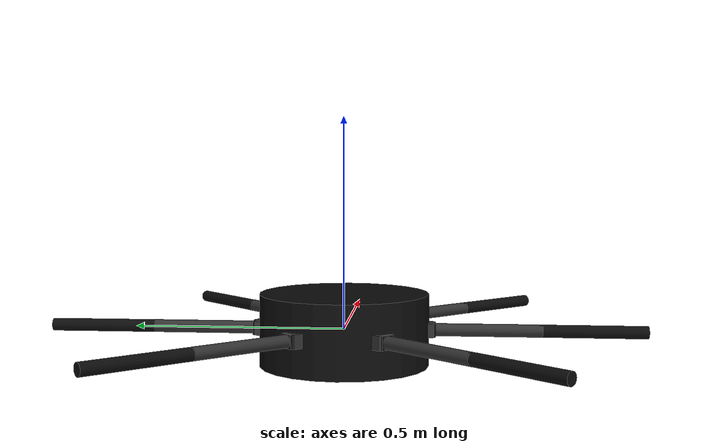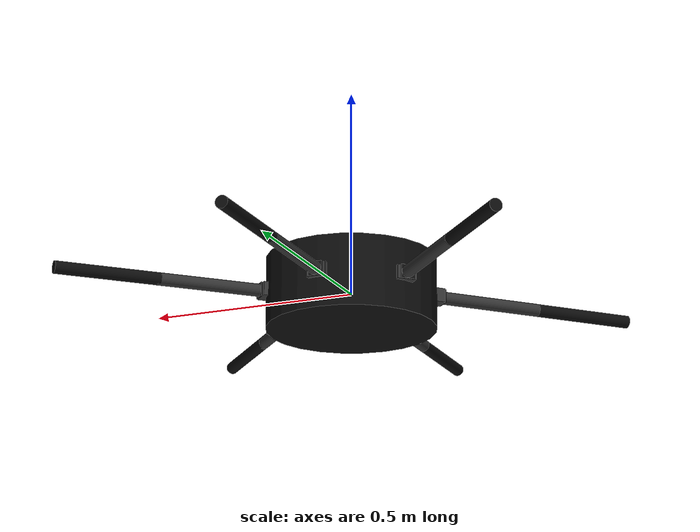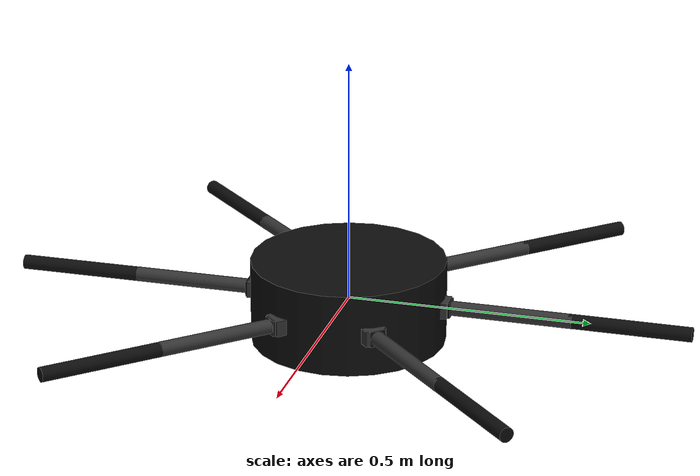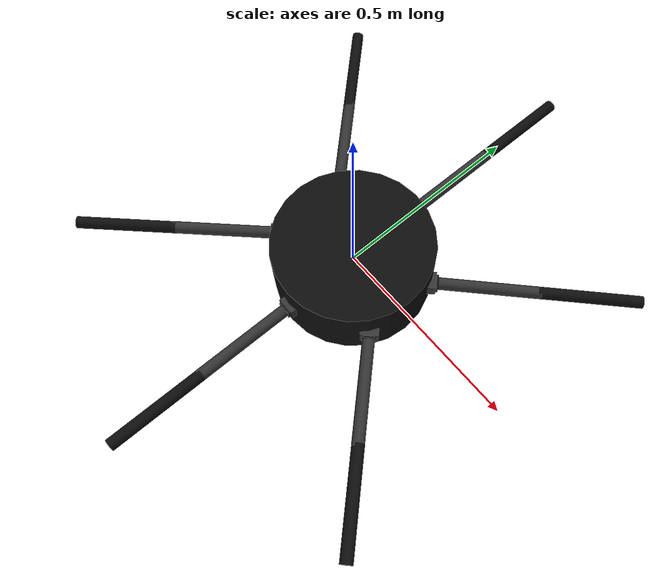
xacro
<?xml version="1.0" ?>
<robot name="ardent"  xmlns:xacro="http://www.ros.org/wiki/xacro">

  <xacro:include filename="$(find ardent)/robot/urdf/ardent_urdf.xacro" />

  <link name="base_link"/>

  <xacro:ardent parent="base_link">
      <origin xyz="0 0 0" rpy="0 0 0" />
  </xacro:ardent>

   <gazebo>
    <plugin filename="libgazebo_ros_control.so" name="gazebo_ros_control">
    </plugin>
  </gazebo>

</robot>

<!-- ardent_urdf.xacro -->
<robot xmlns:xacro="http://www.ros.org/wiki/xacro">

<xacro:property name="connect_offset" value="0.01" />
<xacro:property name="femur_offset_y" value="-0.125" />
<xacro:property name="femur_offset_z" value="-0.125" />

<xacro:property name="joint_lower_limit" value ="-${1.5}"/>
<xacro:property name="joint_upper_limit" value ="${1.5}"/>

<xacro:macro name="ardent" params="parent *origin">

    <link name="MP_BODY">
      <inertial>
        <origin xyz="0 0 0" />
        <mass value="6.8"/>
        <inertia ixx="3.1081800"  ixy="-0.25460189"  ixz="2.0318174" iyy="6.3787776" iyz="0.16417863" izz="5.3316425" />
      </inertial>
      <visual>
        <!--origin xyz="-0.0235 0 -0.03525" rpy="0 0 0" /-->
        <origin xyz="0 0 0" rpy="0 0 0" />
        <geometry>
          <cylinder radius="0.2" length="0.17"/>
          <!--box size="0.102 0.109 0.106" /-->
        </geometry>
        <material name="Orange">
        <color rgba="12 12 12 1.0"/>
      </material>
      </visual>
      <collision>
        <origin xyz="0 0 0" rpy="0 0 0" />
        <geometry>
          <cylinder radius="0.2" length="0.17"/>
        </geometry>
      </collision>
    </link>

    <joint name="j_ardent_attachment" type="fixed">
      <parent link="${parent}"/>
      <child link="MP_BODY"/>
      <xacro:insert_block name="origin" />
    </joint>

    <!-- Build Leg -->
    <xacro:leg_l xyz="0.175 -0.1  0.001116"  rpy="0 0 5.475" suffix="rf"/>
    <xacro:leg_l xyz="0 -0.2  0.001116"  rpy="0 0 -1.57" suffix="rm"/>
    <xacro:leg_l xyz="-0.175 -0.1  0.001116"  rpy="0 0 -2.335" suffix="rr"/>

    <xacro:leg_l xyz="0.175 0.1  0.001116"  rpy="0 0 0.765" suffix="lf"/>
    <xacro:leg_l xyz="0 0.2  0.001116"  rpy="0 0 1.57" suffix="lm"/>
    <xacro:leg_l xyz="-0.175 0.1  0.001116"  rpy="0 0 2.335" suffix="lr"/>

</xacro:macro>

 <xacro:macro name="leg_l" params="xyz rpy suffix">
  <link name="coxa_${suffix}">
    <inertial>
      <origin xyz="0 0 0" rpy="0 0 0"  />
      <mass value="0.024357719"/>
     <inertia ixx="0.0051411124"  ixy="-0.00057530255"  ixz="-0.000024729049" iyy="0.0081915737" iyz="-0.000019223094" izz="0.0011379812" />
    </inertial>
    <visual>
      <origin xyz="0 0 0" rpy="0 0 0"  />
      <geometry>
        <box size="0.022 0.045 0.0325" />
      </geometry>
      <material name="Grey">
        <color rgba="0.20 0.20 0.20 1.0"/>
      </material>
    </visual>
    <collision>
      <origin xyz="0 0 0" rpy="0 0 0"  />
      <geometry>
        <box size="0.022 0.045 0.0325" />
      </geometry>
    </collision>
  </link>

  <link name="c2_${suffix}">
    <inertial>
      <origin xyz="0 0 0" rpy="0 0 0"  />
      <mass value="0.024357719"/>
     <inertia ixx="0.0051411124"  ixy="-0.00057530255"  ixz="-0.000024729049" iyy="0.0081915737" iyz="-0.000019223094" izz="0.0011379812" />
    </inertial>
    <visual>
      <origin xyz="0 0 0" rpy="0 0 0"  />
      <geometry>
        <box size="0.005 0.0325 0.0325" />
      </geometry>
      <material name="Orange">
        <color rgba="12 12 12 1.0"/>
      </material>
    </visual>
    <collision>
      <origin xyz="0 0 0" rpy="0 0 0"  />
      <geometry>
        <box size="0.005 0.0325 0.0325" />
      </geometry>
    </collision>
  </link>

  <link name="femur_${suffix}">
    <inertial>
      <origin xyz="1 0 0" rpy="0 0 0"  />
      <mass value="0.0286"/>
     <inertia ixx="0.00059"  ixy="-0.0"  ixz="-0.0" iyy="0.0" iyz="-0.0" izz="0.00059" />
    </inertial>
    <visual>
      <origin xyz="0.125 0 0" rpy="0 1.57 0"  />
      <geometry>
        <cylinder  radius="0.015" length="0.25" />
      </geometry>
      <material name="Grey">
        <color rgba="0.20 0.20 0.20 1.0"/>
      </material>
    </visual>
    <collision>
      <origin xyz="0.125 0 0" rpy="0 1.57 0"  />
      <geometry>
        <cylinder  radius="0.015" length="0.25" />
      </geometry>
    </collision>
  </link>

  <link name="tibia_${suffix}">
    <inertial>
      <origin xyz="0 0 0" rpy="0 0 0"  />
      <mass value="0.0286"/>
      <!-- g/mm^2 -->
     <inertia ixx="0.00059"  ixy="-0.0"  ixz="-0.0" iyy="0.0" iyz="-0.0" izz="0.00059" />
    </inertial>
    <visual>
      <origin xyz="0.117 0 0" rpy="1.57 0 1.57"  />
      <geometry>
        <cylinder  radius="0.015" length="0.25" />
      </geometry>
      <material name="Orange">
        <color rgba="12 12 12 1.0"/>
      </material>
    </visual>
    <collision>
      <origin xyz="0.117 0 0" rpy="1.57 0 1.57"  />
      <geometry>
        <cylinder  radius="0.015" length="0.25" />
      </geometry>
    </collision>
  </link>

<joint name="j_coxa_${suffix}" type="revolute">
    <parent link="MP_BODY"/>
    <child link="coxa_${suffix}"/>
    <origin xyz="${xyz}" rpy="${rpy}" />
    <axis xyz="0 0 1" />
    <limit effort="30" velocity="0.5" lower="-3.14" upper="3.14" />
  </joint>

  <joint name="j_c2_${suffix}" type="fixed">
    <parent link="coxa_${suffix}"/>
    <child link="c2_${suffix}"/>
    <origin xyz="0.0135 0 0" rpy="0 0 0" />
    <limit effort="30" velocity="0.5" lower="-3.14" upper="3.14" />
  </joint>

  <joint name="j_femur_${suffix}" type="revolute">
    <parent link="c2_${suffix}"/>
    <child link="femur_${suffix}"/>
    <origin xyz="0 0 0" rpy=" 1.57 0 0" />
    <axis xyz="0 0 1" />
    <limit effort="30" velocity="0.5" lower="-3.14" upper="3.14" />
  </joint>

  <joint name="j_tibia_${suffix}" type="revolute">
    <parent link="femur_${suffix}"/>
    <child link="tibia_${suffix}"/>
    <origin xyz="0.25 0 0" rpy="0 0 0" />
    <axis xyz="0 0 1" />
    <limit effort="30" velocity="0.5" lower="-3.14" upper="3.14" />
  </joint>

   <transmission name="t_coxa_${suffix}">
    <type>transmission_interface/SimpleTransmission</type>
    <joint name="j_coxa_${suffix}">
      <hardwareInterface>hardware_interface/EffortJointInterface</hardwareInterface>
    </joint>
    <actuator name="m_coxa_${suffix}">
      <hardwareInterface>hardware_interface/EffortJointInterface</hardwareInterface>
      <mechanicalReduction>1</mechanicalReduction>
    </actuator>
  </transmission>

   <transmission name="t_femur_${suffix}">
    <type>transmission_interface/SimpleTransmission</type>
    <joint name="j_femur_${suffix}">
      <hardwareInterface>hardware_interface/EffortJointInterface</hardwareInterface>
    </joint>
    <actuator name="m_femur_${suffix}">
      <hardwareInterface>hardware_interface/EffortJointInterface</hardwareInterface>
      <mechanicalReduction>1</mechanicalReduction>
    </actuator>
  </transmission>

   <transmission name="t_tibia_${suffix}">
    <type>transmission_interface/SimpleTransmission</type>
    <joint name="j_tibia_${suffix}">
      <hardwareInterface>hardware_interface/EffortJointInterface</hardwareInterface>
    </joint>
    <actuator name="m_tibia_${suffix}">
      <hardwareInterface>hardware_interface/EffortJointInterface</hardwareInterface>
      <mechanicalReduction>1</mechanicalReduction>
    </actuator>
  </transmission>

  <gazebo reference="MP_BODY">
    <material>Gazebo/Orange</material>
  </gazebo>

  <gazebo reference="coxa_${suffix}">
    <material>Gazebo/Black</material>
  </gazebo>

  <gazebo reference="c2_${suffix}">
    <material>Gazebo/Orange</material>
  </gazebo>

  <gazebo reference="femur_${suffix}">
    <material>Gazebo/Black</material>
  </gazebo>

  <gazebo reference="tibia_${suffix}">
    <material>Gazebo/Orange</material>
  </gazebo>

</xacro:macro>

</robot>
